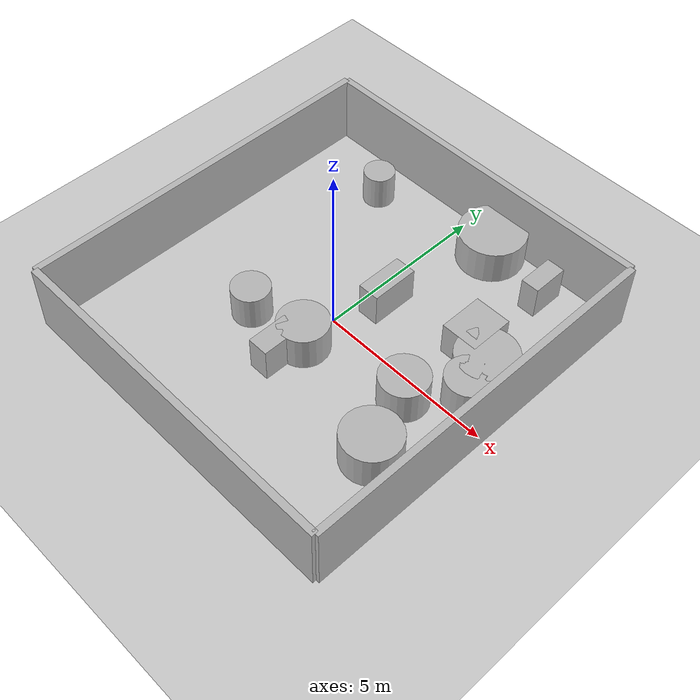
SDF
<?xml version="1.0"?>
<sdf version="1.6">
  <world name="env_41">

    <include><uri>model://ground_plane</uri></include>
    <include><uri>model://sun</uri></include>

    <!-- WALLS -->
    <model name="wall_north"><static>true</static><pose>0 5.344209069384178 1 0 0 0</pose>
      <link name="link"><collision name="collision">
        <geometry><box><size>10.111466061121753 0.2 2</size></box></geometry>
      </collision><visual name="visual">
        <geometry><box><size>10.111466061121753 0.2 2</size></box></geometry>
      </visual></link>
    </model>

    <model name="wall_south"><static>true</static><pose>0 -5.344209069384178 1 0 0 0</pose>
      <link name="link"><collision name="collision">
        <geometry><box><size>10.111466061121753 0.2 2</size></box></geometry>
      </collision><visual name="visual">
        <geometry><box><size>10.111466061121753 0.2 2</size></box></geometry>
      </visual></link>
    </model>

    <model name="wall_east"><static>true</static><pose>5.0557330305608765 0 1 0 0 1.57</pose>
      <link name="link"><collision name="collision">
        <geometry><box><size>10.688418138768355 0.2 2</size></box></geometry>
      </collision><visual name="visual">
        <geometry><box><size>10.688418138768355 0.2 2</size></box></geometry>
      </visual></link>
    </model>

    <model name="wall_west"><static>true</static><pose>-5.0557330305608765 0 1 0 0 1.57</pose>
      <link name="link"><collision name="collision">
        <geometry><box><size>10.688418138768355 0.2 2</size></box></geometry>
      </collision><visual name="visual">
        <geometry><box><size>10.688418138768355 0.2 2</size></box></geometry>
      </visual></link>
    </model>

    <!-- SENSOR -->

    <model name="lidar_sensor">
      <static>true</static>
      <pose>4.526192531421991 -1.3637956888466225 0.4 0 0 0</pose>
      <link name="link">
        <sensor name="lidar" type="ray">
          <pose>0 0 0 0 0 0</pose>
          <visualize>true</visualize>
          <always_on>true</always_on>
          <update_rate>10</update_rate>
          <ray>
            <scan><horizontal>
              <samples>240</samples>
              <resolution>1</resolution>
              <min_angle>-3.14159</min_angle>
              <max_angle>3.14159</max_angle>
            </horizontal></scan>
            <range><min>0.15</min><max>20.0</max><resolution>0.01</resolution></range>
          </ray>
          <plugin name="lidar_plugin" filename="liblidar_plugin.so"/>
        </sensor>
      </link>
    </model>

    <!-- OBSTACLES -->

    <model name="obstacle_0">
      <static>true</static>
      <pose>2.994976284241969 -0.5164069497026418 0.5 0 0 0</pose>
      <link name="link">
        <collision name="collision">
          <geometry><cylinder><radius>0.67</radius><length>1.0</length></cylinder></geometry>
        </collision>
        <visual name="visual">
          <geometry><cylinder><radius>0.67</radius><length>1.0</length></cylinder></geometry>
        </visual>
      </link>
    </model>

    <model name="obstacle_1">
      <static>true</static>
      <pose>0.07934165713357544 -1.1223246173155381 0.5 0 0 0</pose>
      <link name="link">
        <collision name="collision">
          <geometry><cylinder><radius>0.7</radius><length>1.0</length></cylinder></geometry>
        </collision>
        <visual name="visual">
          <geometry><cylinder><radius>0.7</radius><length>1.0</length></cylinder></geometry>
        </visual>
      </link>
    </model>

    <model name="obstacle_2">
      <static>true</static>
      <pose>-0.08366023633541886 -1.8426295597510554 0.5 0 0 0</pose>
      <link name="link">
        <collision name="collision">
          <geometry><box><size>0.6 1.3 1.0</size></box></geometry>
        </collision>
        <visual name="visual">
          <geometry><box><size>0.6 1.3 1.0</size></box></geometry>
        </visual>
      </link>
    </model>

    <model name="obstacle_3">
      <static>true</static>
      <pose>4.071221222512449 0.6008020413049691 0.5 0 0 0</pose>
      <link name="link">
        <collision name="collision">
          <geometry><cylinder><radius>0.64</radius><length>1.0</length></cylinder></geometry>
        </collision>
        <visual name="visual">
          <geometry><cylinder><radius>0.64</radius><length>1.0</length></cylinder></geometry>
        </visual>
      </link>
    </model>

    <model name="obstacle_4">
      <static>true</static>
      <pose>-2.4502790947754223 4.092560063420937 0.5 0 0 0</pose>
      <link name="link">
        <collision name="collision">
          <geometry><cylinder><radius>0.44</radius><length>1.0</length></cylinder></geometry>
        </collision>
        <visual name="visual">
          <geometry><cylinder><radius>0.44</radius><length>1.0</length></cylinder></geometry>
        </visual>
      </link>
    </model>

    <model name="obstacle_5">
      <static>true</static>
      <pose>1.2561831694821413 4.644862372805036 0.5 0 0 0</pose>
      <link name="link">
        <collision name="collision">
          <geometry><cylinder><radius>0.94</radius><length>1.0</length></cylinder></geometry>
        </collision>
        <visual name="visual">
          <geometry><cylinder><radius>0.94</radius><length>1.0</length></cylinder></geometry>
        </visual>
      </link>
    </model>

    <model name="obstacle_6">
      <static>true</static>
      <pose>0.5192429758985471 1.3887209430070744 0.5 0 0 0</pose>
      <link name="link">
        <collision name="collision">
          <geometry><box><size>0.62 1.36 1.0</size></box></geometry>
        </collision>
        <visual name="visual">
          <geometry><box><size>0.62 1.36 1.0</size></box></geometry>
        </visual>
      </link>
    </model>

    <model name="obstacle_7">
      <static>true</static>
      <pose>3.632229440351489 -2.254724548450491 0.5 0 0 0</pose>
      <link name="link">
        <collision name="collision">
          <geometry><cylinder><radius>0.8</radius><length>1.0</length></cylinder></geometry>
        </collision>
        <visual name="visual">
          <geometry><cylinder><radius>0.8</radius><length>1.0</length></cylinder></geometry>
        </visual>
      </link>
    </model>

    <model name="obstacle_8">
      <static>true</static>
      <pose>3.0953451892449824 1.918794373046123 0.5 0 0 0</pose>
      <link name="link">
        <collision name="collision">
          <geometry><box><size>1.05 1.27 1.0</size></box></geometry>
        </collision>
        <visual name="visual">
          <geometry><box><size>1.05 1.27 1.0</size></box></geometry>
        </visual>
      </link>
    </model>

    <model name="obstacle_9">
      <static>true</static>
      <pose>3.201361953799678 4.359238846926813 0.5 0 0 0</pose>
      <link name="link">
        <collision name="collision">
          <geometry><box><size>0.52 1.04 1.0</size></box></geometry>
        </collision>
        <visual name="visual">
          <geometry><box><size>0.52 1.04 1.0</size></box></geometry>
        </visual>
      </link>
    </model>

    <model name="obstacle_10">
      <static>true</static>
      <pose>3.9107143423078607 1.4130853797756524 0.5 0 0 0</pose>
      <link name="link">
        <collision name="collision">
          <geometry><cylinder><radius>0.84</radius><length>1.0</length></cylinder></geometry>
        </collision>
        <visual name="visual">
          <geometry><cylinder><radius>0.84</radius><length>1.0</length></cylinder></geometry>
        </visual>
      </link>
    </model>

    <model name="obstacle_11">
      <static>true</static>
      <pose>-1.6859266308072844 -1.3158683842031635 0.5 0 0 0</pose>
      <link name="link">
        <collision name="collision">
          <geometry><cylinder><radius>0.54</radius><length>1.0</length></cylinder></geometry>
        </collision>
        <visual name="visual">
          <geometry><cylinder><radius>0.54</radius><length>1.0</length></cylinder></geometry>
        </visual>
      </link>
    </model>

  </world>
</sdf>
